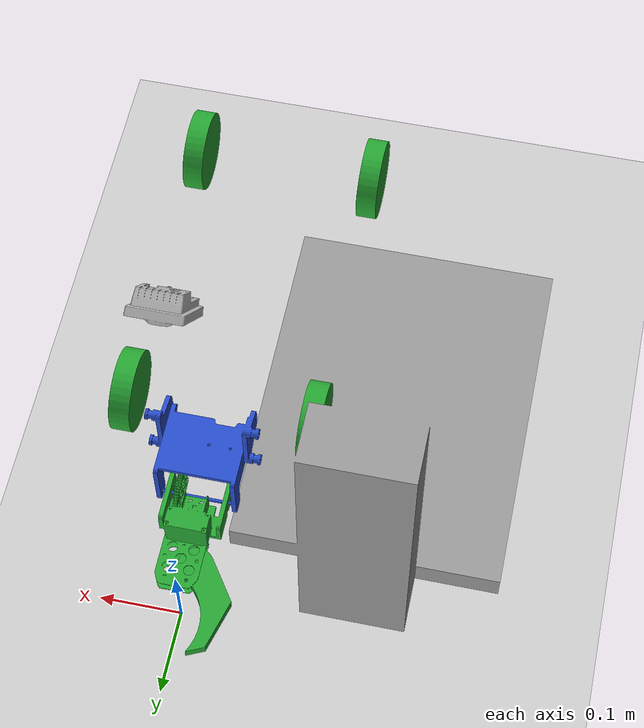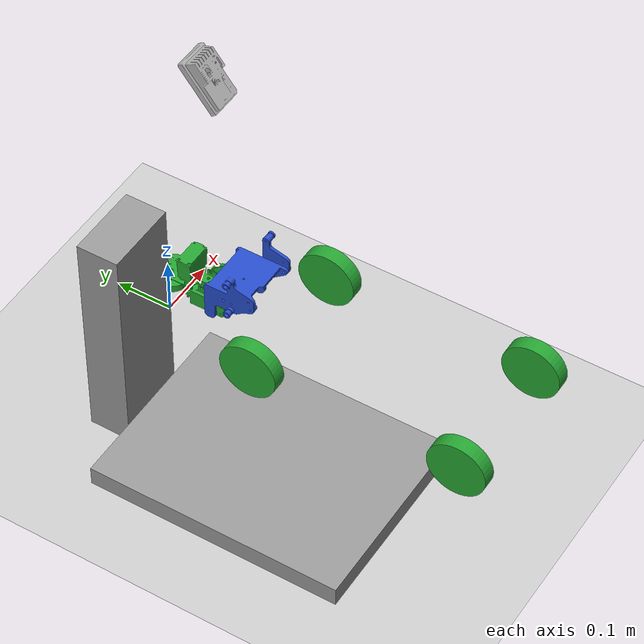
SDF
<sdf version="1.4">
 <world name="default">
  <include><uri>model://sun</uri></include>
  <include><uri>model://ground_plane</uri></include>
  <include><uri>model://asphalt_plane</uri></include>
  <include><uri>model://GearsBot</uri><pose>0.2011 -0.5111 0.2275 0 0 0</pose></include>
 </world>
</sdf>
